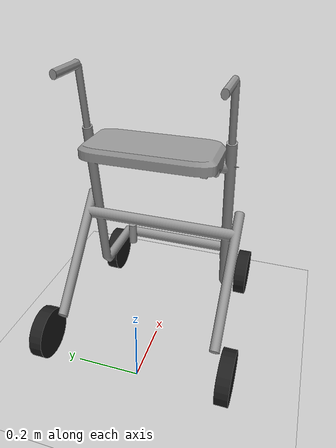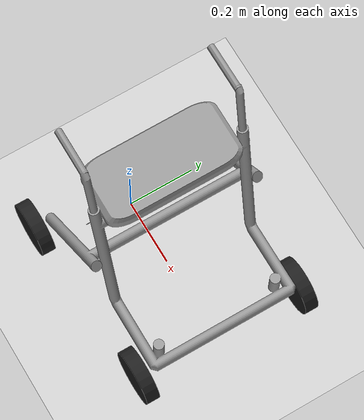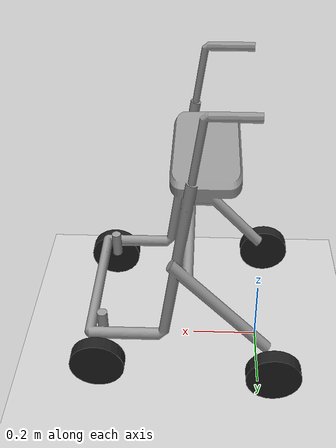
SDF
<?xml version="1.0" ?>
<sdf version="1.4">
  <world name="simple">
    <physics type="ode">
      <gravity>0 0 -9.81</gravity>
      <ode>
        <solver>
          <type>quick</type>
          <iters>200</iters>
          <sor>1.4</sor>
        </solver>
        <constraints>
          <cfm>0.0</cfm>
          <erp>0.2</erp>
          <contact_max_correcting_vel>100.0</contact_max_correcting_vel>
          <contact_surface_layer>0.0</contact_surface_layer>
        </constraints>
      </ode>
      <real_time_update_rate>1500</real_time_update_rate>
      <max_step_size>0.0005</max_step_size>
    </physics>
    <!-- A global light source -->
    <include>
      <uri>model://sun</uri>
    </include>
    <!-- A ground plane -->
    <include>
      <uri>model://ground_plane</uri>
    </include>
    <!-- A door -->
    <include>
      <uri>model://walker_simple</uri>
    </include>

  </world>
</sdf>

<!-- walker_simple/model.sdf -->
<sdf version='1.6'>
  <model name='walker'>
    <link name='link_0'>
      <pose frame=''>0.1 1.7e-05 -0.02 1.56998 -0 0</pose>
      <inertial>
        <mass>1</mass>
        <inertia>
          <ixx>0.166667</ixx>
          <ixy>0</ixy>
          <ixz>0</ixz>
          <iyy>0.166667</iyy>
          <iyz>0</iyz>
          <izz>0.166667</izz>
        </inertia>
        <pose frame=''>0 0 0 0 -0 0</pose>
      </inertial>
      <gravity>1</gravity>
      <self_collide>0</self_collide>
      <kinematic>0</kinematic>
      <visual name='visual'>
        <pose frame=''>0 0 0 0 -0 0</pose>
        <geometry>
          <mesh>
            <uri>model://walker_simple/meshes/walker_upper.stl</uri>
            <scale>1 1.3 1</scale>
          </mesh>
        </geometry>
        <material>
          <lighting>1</lighting>
          <script>
            <uri>file://media/materials/scripts/gazebo.material</uri>
            <name>Gazebo/Grey</name>
          </script>
          <ambient>0.3 0.3 0.3 1</ambient>
          <diffuse>0.7 0.7 0.7 1</diffuse>
          <specular>0.01 0.01 0.01 1</specular>
          <emissive>0 0 0 1</emissive>
          <shader type='vertex'>
            <normal_map>__default__</normal_map>
          </shader>
        </material>
        <cast_shadows>1</cast_shadows>
        <transparency>0</transparency>
      </visual>
      <collision name='collision'>
        <laser_retro>0</laser_retro>
        <max_contacts>10</max_contacts>
        <pose frame=''>0 0 0 0 -0 0</pose>
        <geometry>
          <mesh>
            <uri>model://walker_simple/meshes/walker_upper.stl</uri>
	    <scale>1 1.3 1</scale>
          </mesh>
        </geometry>
        <surface>
          <friction>
            <ode>
              <mu>1</mu>
              <mu2>1</mu2>
              <fdir1>0 0 0</fdir1>
              <slip1>0</slip1>
              <slip2>0</slip2>
            </ode>
            <torsional>
              <coefficient>1</coefficient>
              <patch_radius>0</patch_radius>
              <surface_radius>0</surface_radius>
              <use_patch_radius>1</use_patch_radius>
              <ode>
                <slip>0</slip>
              </ode>
            </torsional>
          </friction>
          <bounce>
            <restitution_coefficient>0</restitution_coefficient>
            <threshold>1e+06</threshold>
          </bounce>
          <contact>
            <collide_without_contact>0</collide_without_contact>
            <collide_without_contact_bitmask>1</collide_without_contact_bitmask>
            <collide_bitmask>1</collide_bitmask>
            <ode>
              <soft_cfm>0</soft_cfm>
              <soft_erp>0.2</soft_erp>
              <kp>1e+13</kp>
              <kd>1</kd>
              <max_vel>0.01</max_vel>
              <min_depth>0</min_depth>
            </ode>
            <bullet>
              <split_impulse>1</split_impulse>
              <split_impulse_penetration_threshold>-0.01</split_impulse_penetration_threshold>
              <soft_cfm>0</soft_cfm>
              <soft_erp>0.2</soft_erp>
              <kp>1e+13</kp>
              <kd>1</kd>
            </bullet>
          </contact>
        </surface>
      </collision>
    </link>
    <model name='cart_front_steer'>
      <link name='chassis'>
        <pose frame=''>0 0 0.15 0 -0 0</pose>
        <inertial>
          <pose frame=''>0.1 0 0 0 -0 0</pose>
          <mass>10</mass>
          <inertia>
            <ixx>0.216667</ixx>
            <iyy>0.841667</iyy>
            <izz>1.04167</izz>
            <ixy>0</ixy>
            <ixz>0</ixz>
            <iyz>0</iyz>
          </inertia>
        </inertial>

      </link>
      <link name='wheel_front_left'>
        <pose frame=''>0.31 0.25 0.15 -1.5708 -0.087266 0</pose>
        <inertial>
          <mass>0.5</mass>
          <inertia>
            <ixx>0.00307917</ixx>
            <iyy>0.00307917</iyy>
            <izz>0.005625</izz>
            <ixy>0</ixy>
            <ixz>0</ixz>
            <iyz>0</iyz>
          </inertia>
        </inertial>
        <collision name='collision'>
          <geometry>
            <cylinder>
              <radius>0.08</radius>
              <length>0.04</length>
            </cylinder>
          </geometry>
        </collision>
        <visual name='visual'>
          <geometry>
            <cylinder>
              <radius>0.08</radius>
              <length>0.04</length>
            </cylinder>
          </geometry>
          <material>
            <script>
              <uri>file://media/materials/scripts/gazebo.material</uri>
              <name>Gazebo/Black</name>
            </script>
          </material>
        </visual>
      </link>
      <joint name='wheel_front_left_steer_spin' type='universal'>
        <parent>chassis</parent>
        <child>wheel_front_left</child>
        <axis>
          <xyz>0 -1 0</xyz>
          <limit>
            <lower>-0.610865</lower>
            <upper>0.610865</upper>
          </limit>
          <use_parent_model_frame>0</use_parent_model_frame>
        </axis>
        <axis2>
          <xyz>0 0 1</xyz>
          <use_parent_model_frame>0</use_parent_model_frame>
        </axis2>
      </joint>
      <link name='wheel_front_right'>
        <pose frame=''>0.31 -0.25 0.15 -1.5708 -0.087266 0</pose>
        <inertial>
          <mass>0.5</mass>
          <inertia>
            <ixx>0.00307917</ixx>
            <iyy>0.00307917</iyy>
            <izz>0.005625</izz>
            <ixy>0</ixy>
            <ixz>0</ixz>
            <iyz>0</iyz>
          </inertia>
        </inertial>
        <collision name='collision'>
          <geometry>
            <cylinder>
              <radius>0.08</radius>
              <length>0.04</length>
            </cylinder>
          </geometry>
        </collision>
        <visual name='visual'>
          <geometry>
            <cylinder>
              <radius>0.08</radius>
              <length>0.04</length>
            </cylinder>
          </geometry>
          <material>
            <script>
              <uri>file://media/materials/scripts/gazebo.material</uri>
              <name>Gazebo/Black</name>
            </script>
          </material>
        </visual>
      </link>
      <joint name='wheel_front_right_steer_spin' type='universal'>
        <parent>chassis</parent>
        <child>wheel_front_right</child>
        <axis>
          <xyz>0 -1 0</xyz>
          <limit>
            <lower>-0.610865</lower>
            <upper>0.610865</upper>
          </limit>
          <use_parent_model_frame>0</use_parent_model_frame>
        </axis>
        <axis2>
          <xyz>0 0 1</xyz>
          <use_parent_model_frame>0</use_parent_model_frame>
        </axis2>
      </joint>
      <link name='wheel_rear_left'>
        <pose frame=''>-0.2 0.285 0.15 -1.5708 0 0</pose>
        <inertial>
          <mass>0.5</mass>
          <inertia>
            <ixx>0.00307917</ixx>
            <iyy>0.00307917</iyy>
            <izz>0.005625</izz>
            <ixy>0</ixy>
            <ixz>0</ixz>
            <iyz>0</iyz>
          </inertia>
        </inertial>
        <collision name='collision'>
          <geometry>
            <cylinder>
              <radius>0.08</radius>
              <length>0.04</length>
            </cylinder>
          </geometry>
        </collision>
        <visual name='visual'>
          <geometry>
            <cylinder>
              <radius>0.08</radius>
              <length>0.04</length>
            </cylinder>
          </geometry>
          <material>
            <script>
              <uri>file://media/materials/scripts/gazebo.material</uri>
              <name>Gazebo/Black</name>
            </script>
          </material>
        </visual>
      </link>
      <joint name='wheel_rear_left_spin' type='revolute'>
        <parent>chassis</parent>
        <child>wheel_rear_left</child>
        <axis>
          <xyz>0 0 1</xyz>
          <use_parent_model_frame>0</use_parent_model_frame>
          <limit>
            <lower>-1e+16</lower>
            <upper>1e+16</upper>
          </limit>
        </axis>
      </joint>
      <link name='wheel_rear_right'>
        <pose frame=''>-0.2 -0.285 0.15 -1.5708 0 0</pose>
        <inertial>
          <mass>0.5</mass>
          <inertia>
            <ixx>0.00307917</ixx>
            <iyy>0.00307917</iyy>
            <izz>0.005625</izz>
            <ixy>0</ixy>
            <ixz>0</ixz>
            <iyz>0</iyz>
          </inertia>
        </inertial>
        <collision name='collision'>
          <geometry>
            <cylinder>
              <radius>0.08</radius>
              <length>0.04</length>
            </cylinder>
          </geometry>
        </collision>
        <visual name='visual'>
          <geometry>
            <cylinder>
              <radius>0.08</radius>
              <length>0.04</length>
            </cylinder>
          </geometry>
          <material>
            <script>
              <uri>file://media/materials/scripts/gazebo.material</uri>
              <name>Gazebo/Black</name>
            </script>
          </material>
        </visual>
      </link>
      <joint name='wheel_rear_right_spin' type='revolute'>
        <parent>chassis</parent>
        <child>wheel_rear_right</child>
        <axis>
          <xyz>0 0 1</xyz>
          <use_parent_model_frame>0</use_parent_model_frame>
          <limit>
            <lower>-1e+16</lower>
            <upper>1e+16</upper>
          </limit>
        </axis>
      </joint>
      <pose frame=''>0.165829 -1.7e-05 -0.020463 0 -0 0</pose>
    </model>
    <joint name='chassis_JOINT_3' type='fixed'>
      <parent>cart_front_steer::chassis</parent>
      <child>link_0</child>
      <pose frame=''>0 0 0 0 -0 0</pose>
      <physics>
        <ode>
          <limit>
            <cfm>0</cfm>
            <erp>0.2</erp>
          </limit>
          <suspension>
            <cfm>0</cfm>
            <erp>0.2</erp>
          </suspension>
        </ode>
      </physics>
    </joint>
    <static>0</static>
    <allow_auto_disable>1</allow_auto_disable>
  </model>
</sdf>
